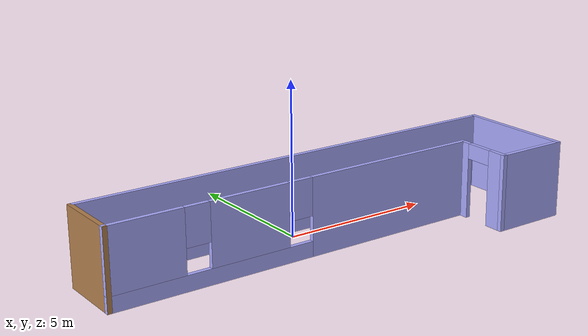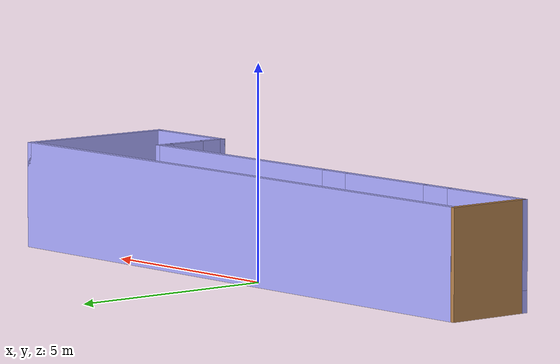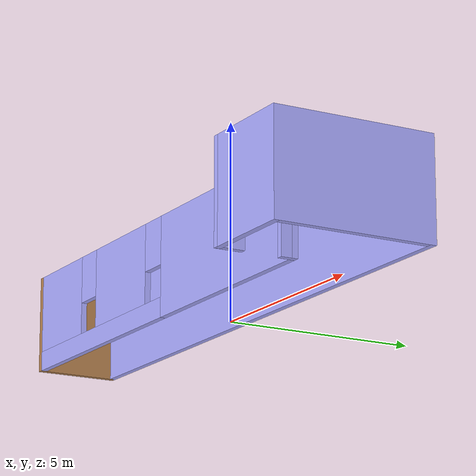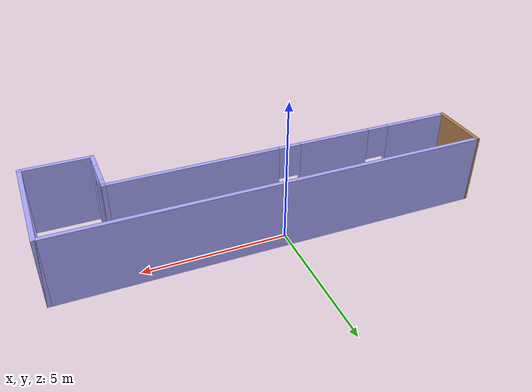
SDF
<?xml version='1.0'?>
<sdf version='1.6'>
  <model name='building'>
    <pose frame=''>0.414805 -1.52293 0 0 -0 0</pose>
    <link name='Wall_0'>
      <collision name='Wall_0_Collision'>
        <geometry>
          <box>
            <size>15 0.15 2.5</size>
          </box>
        </geometry>
        <pose frame=''>0 0 1.25 0 -0 0</pose>
      </collision>
      <visual name='Wall_0_Visual'>
        <pose frame=''>0 0 1.25 0 -0 0</pose>
        <geometry>
          <box>
            <size>15 0.15 2.5</size>
          </box>
        </geometry>
        <material>
          <script>
            <uri>file://media/materials/scripts/gazebo.material</uri>
            <name>Gazebo/Grey</name>
          </script>
          <ambient>0.666667 0.666667 1 1</ambient>
        </material>
        <meta>
          <layer>0</layer>
        </meta>
      </visual>
      <pose frame=''>0.049935 1.925 0 0 -0 0</pose>
    </link>
    <link name='Wall_1'>
      <collision name='Wall_1_Collision'>
        <geometry>
          <box>
            <size>4 0.15 2.5</size>
          </box>
        </geometry>
        <pose frame=''>0 0 1.25 0 -0 0</pose>
      </collision>
      <visual name='Wall_1_Visual'>
        <pose frame=''>0 0 1.25 0 -0 0</pose>
        <geometry>
          <box>
            <size>4 0.15 2.5</size>
          </box>
        </geometry>
        <material>
          <script>
            <uri>file://media/materials/scripts/gazebo.material</uri>
            <name>Gazebo/Grey</name>
          </script>
          <ambient>0.666667 0.666667 1 1</ambient>
        </material>
        <meta>
          <layer>0</layer>
        </meta>
      </visual>
      <pose frame=''>7.47494 0 0 0 0 -1.5708</pose>
    </link>
    <link name='Wall_2'>
      <collision name='Wall_2_Collision'>
        <geometry>
          <box>
            <size>2.5 0.15 2.5</size>
          </box>
        </geometry>
        <pose frame=''>0 0 1.25 0 -0 0</pose>
      </collision>
      <visual name='Wall_2_Visual'>
        <pose frame=''>0 0 1.25 0 -0 0</pose>
        <geometry>
          <box>
            <size>2.5 0.15 2.5</size>
          </box>
        </geometry>
        <material>
          <script>
            <uri>file://media/materials/scripts/gazebo.material</uri>
            <name>Gazebo/Grey</name>
          </script>
          <ambient>0.666667 0.666667 1 1</ambient>
        </material>
        <meta>
          <layer>0</layer>
        </meta>
      </visual>
      <pose frame=''>6.29993 -1.925 0 0 -0 3.14159</pose>
    </link>
    <link name='Wall_3'>
      <pose frame=''>5.12493 -1 0 0 -0 1.5708</pose>
      <visual name='Wall_3_Visual_0'>
        <pose frame=''>-0.661705 0 1.25 0 -0 0</pose>
        <geometry>
          <box>
            <size>0.67659 0.15 2.5</size>
          </box>
        </geometry>
        <material>
          <script>
            <uri>file://media/materials/scripts/gazebo.material</uri>
            <name>Gazebo/Grey</name>
          </script>
          <ambient>0.666667 0.666667 1 1</ambient>
        </material>
        <meta>
          <layer>0</layer>
        </meta>
      </visual>
      <collision name='Wall_3_Collision_0'>
        <geometry>
          <box>
            <size>0.67659 0.15 2.5</size>
          </box>
        </geometry>
        <pose frame=''>-0.661705 0 1.25 0 -0 0</pose>
      </collision>
      <visual name='Wall_3_Visual_1'>
        <pose frame=''>0.788295 0 1.25 0 -0 0</pose>
        <geometry>
          <box>
            <size>0.42341 0.15 2.5</size>
          </box>
        </geometry>
        <material>
          <script>
            <uri>file://media/materials/scripts/gazebo.material</uri>
            <name>Gazebo/Grey</name>
          </script>
          <ambient>0.666667 0.666667 1 1</ambient>
        </material>
        <meta>
          <layer>0</layer>
        </meta>
      </visual>
      <collision name='Wall_3_Collision_1'>
        <geometry>
          <box>
            <size>0.42341 0.15 2.5</size>
          </box>
        </geometry>
        <pose frame=''>0.788295 0 1.25 0 -0 0</pose>
      </collision>
      <visual name='Wall_3_Visual_2'>
        <pose frame=''>0.12659 0 2.25 0 -0 0</pose>
        <geometry>
          <box>
            <size>0.9 0.15 0.5</size>
          </box>
        </geometry>
        <material>
          <script>
            <uri>file://media/materials/scripts/gazebo.material</uri>
            <name>Gazebo/Grey</name>
          </script>
          <ambient>0.666667 0.666667 1 1</ambient>
        </material>
        <meta>
          <layer>0</layer>
        </meta>
      </visual>
      <collision name='Wall_3_Collision_2'>
        <geometry>
          <box>
            <size>0.9 0.15 0.5</size>
          </box>
        </geometry>
        <pose frame=''>0.12659 0 2.25 0 -0 0</pose>
      </collision>
    </link>
    <link name='Wall_4'>
      <pose frame=''>-1.17494 -0.075034 0 0 0 -3.14159</pose>
      <visual name='Wall_4_Visual_0'>
        <pose frame=''>-3.352 0 1.25 0 -0 0</pose>
        <geometry>
          <box>
            <size>6.046 0.15 2.5</size>
          </box>
        </geometry>
        <material>
          <script>
            <uri>file://media/materials/scripts/gazebo.material</uri>
            <name>Gazebo/Grey</name>
          </script>
          <ambient>0.666667 0.666667 1 1</ambient>
        </material>
        <meta>
          <layer>0</layer>
        </meta>
      </visual>
      <collision name='Wall_4_Collision_0'>
        <geometry>
          <box>
            <size>6.046 0.15 2.5</size>
          </box>
        </geometry>
        <pose frame=''>-3.352 0 1.25 0 -0 0</pose>
      </collision>
      <visual name='Wall_4_Visual_1'>
        <pose frame=''>3.023 0 0.25 0 -0 0</pose>
        <geometry>
          <box>
            <size>6.704 0.15 0.5</size>
          </box>
        </geometry>
        <material>
          <script>
            <uri>file://media/materials/scripts/gazebo.material</uri>
            <name>Gazebo/Grey</name>
          </script>
          <ambient>0.666667 0.666667 1 1</ambient>
        </material>
        <meta>
          <layer>0</layer>
        </meta>
      </visual>
      <collision name='Wall_4_Collision_1'>
        <geometry>
          <box>
            <size>6.704 0.15 0.5</size>
          </box>
        </geometry>
        <pose frame=''>3.023 0 0.25 0 -0 0</pose>
      </collision>
      <visual name='Wall_4_Visual_2'>
        <pose frame=''>1.7972 0 1.5 0 -0 0</pose>
        <geometry>
          <box>
            <size>2.65239 0.15 2</size>
          </box>
        </geometry>
        <material>
          <script>
            <uri>file://media/materials/scripts/gazebo.material</uri>
            <name>Gazebo/Grey</name>
          </script>
          <ambient>0.666667 0.666667 1 1</ambient>
        </material>
        <meta>
          <layer>0</layer>
        </meta>
      </visual>
      <collision name='Wall_4_Collision_2'>
        <geometry>
          <box>
            <size>2.65239 0.15 2</size>
          </box>
        </geometry>
        <pose frame=''>1.7972 0 1.5 0 -0 0</pose>
      </collision>
      <visual name='Wall_4_Visual_3'>
        <pose frame=''>5.14919 0 1.5 0 -0 0</pose>
        <geometry>
          <box>
            <size>2.45161 0.15 2</size>
          </box>
        </geometry>
        <material>
          <script>
            <uri>file://media/materials/scripts/gazebo.material</uri>
            <name>Gazebo/Grey</name>
          </script>
          <ambient>0.666667 0.666667 1 1</ambient>
        </material>
        <meta>
          <layer>0</layer>
        </meta>
      </visual>
      <collision name='Wall_4_Collision_3'>
        <geometry>
          <box>
            <size>2.45161 0.15 2</size>
          </box>
        </geometry>
        <pose frame=''>5.14919 0 1.5 0 -0 0</pose>
      </collision>
      <visual name='Wall_4_Visual_4'>
        <pose frame=''>0.071004 0 1.9 0 -0 0</pose>
        <geometry>
          <box>
            <size>0.8 0.15 1.2</size>
          </box>
        </geometry>
        <material>
          <script>
            <uri>file://media/materials/scripts/gazebo.material</uri>
            <name>Gazebo/Grey</name>
          </script>
          <ambient>0.666667 0.666667 1 1</ambient>
        </material>
        <meta>
          <layer>0</layer>
        </meta>
      </visual>
      <collision name='Wall_4_Collision_4'>
        <geometry>
          <box>
            <size>0.8 0.15 1.2</size>
          </box>
        </geometry>
        <pose frame=''>0.071004 0 1.9 0 -0 0</pose>
      </collision>
      <visual name='Wall_4_Visual_5'>
        <pose frame=''>3.52339 0 1.9 0 -0 0</pose>
        <geometry>
          <box>
            <size>0.8 0.15 1.2</size>
          </box>
        </geometry>
        <material>
          <script>
            <uri>file://media/materials/scripts/gazebo.material</uri>
            <name>Gazebo/Grey</name>
          </script>
          <ambient>0.666667 0.666667 1 1</ambient>
        </material>
        <meta>
          <layer>0</layer>
        </meta>
      </visual>
      <collision name='Wall_4_Collision_5'>
        <geometry>
          <box>
            <size>0.8 0.15 1.2</size>
          </box>
        </geometry>
        <pose frame=''>3.52339 0 1.9 0 -0 0</pose>
      </collision>
    </link>
    <link name='Wall_5'>
      <collision name='Wall_5_Collision'>
        <geometry>
          <box>
            <size>2.148 0.15 2.5</size>
          </box>
        </geometry>
        <pose frame=''>0 0 1.25 0 -0 0</pose>
      </collision>
      <visual name='Wall_5_Visual'>
        <pose frame=''>0 0 1.25 0 -0 0</pose>
        <geometry>
          <box>
            <size>2.148 0.15 2.5</size>
          </box>
        </geometry>
        <material>
          <script>
            <uri>file://media/materials/scripts/gazebo.material</uri>
            <name>Gazebo/Wood</name>
          </script>
          <ambient>1 1 1 1</ambient>
        </material>
        <meta>
          <layer>0</layer>
        </meta>
      </visual>
      <pose frame=''>-7.4748 0.923933 0 0 -0 1.5708</pose>
    </link>
    <static>1</static>
  </model>
</sdf>
